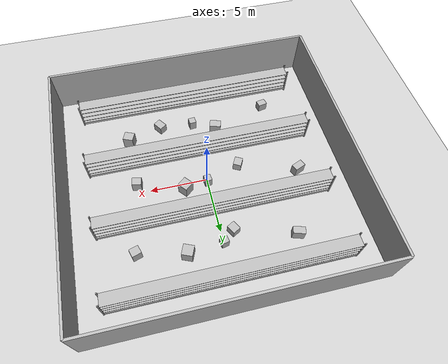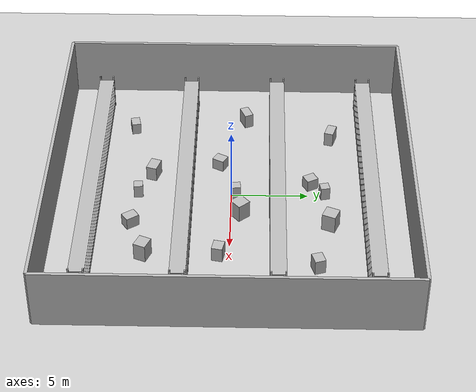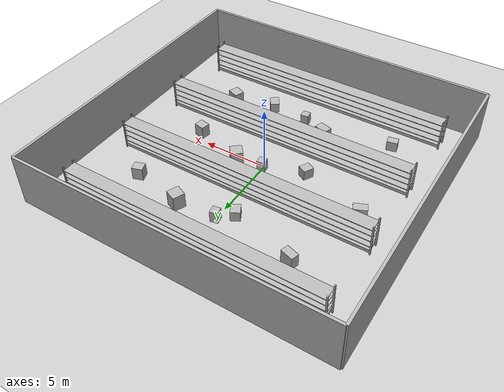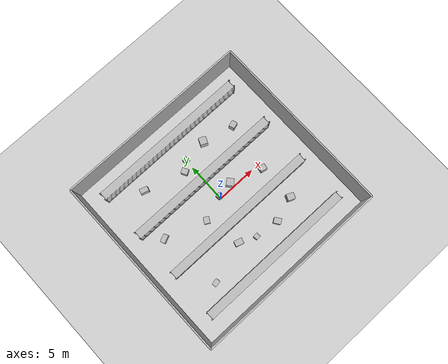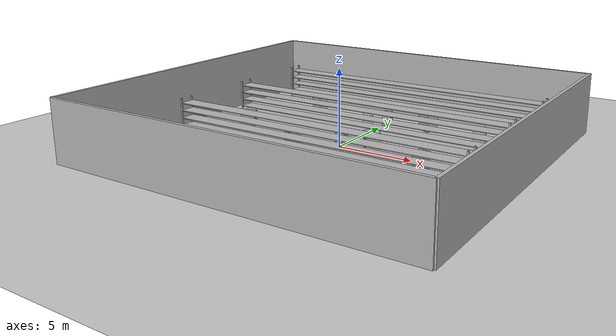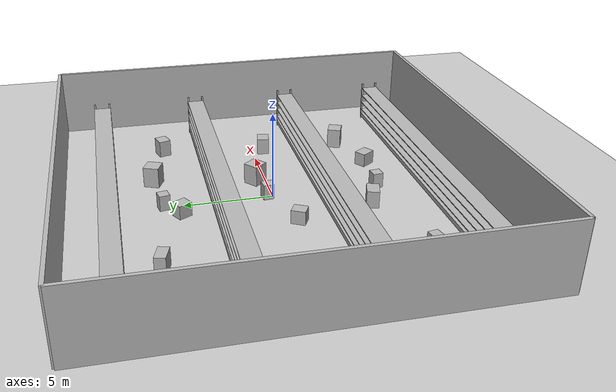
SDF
<?xml version="1.0"?>
<sdf version="1.6">
  <world name="warehouse">

    <!-- ================= GROUND ================= -->
    <include>
      <uri>model://ground_plane</uri>
    </include>

    <include>
      <uri>model://sun</uri>
    </include>

    <!-- =============== SHELF ROW 1 ===================== -->

    <model name="shelf_row_1">
      <static>true</static>
      <pose>0 -9 0 0 0 0</pose>
      <link name="rack1">

        <!-- POSTS -->
        <visual name="r1_flv"><pose>-9.95 -0.45 1.25 0 0 0</pose><geometry><box><size>0.1 0.1 2.5</size></box></geometry></visual>
        <collision name="r1_flc"><pose>-9.95 -0.45 1.25 0 0 0</pose><geometry><box><size>0.1 0.1 2.5</size></box></geometry></collision>

        <visual name="r1_frv"><pose>9.95 -0.45 1.25 0 0 0</pose><geometry><box><size>0.1 0.1 2.5</size></box></geometry></visual>
        <collision name="r1_frc"><pose>9.95 -0.45 1.25 0 0 0</pose><geometry><box><size>0.1 0.1 2.5</size></box></geometry></collision>

        <visual name="r1_blv"><pose>-9.95 0.45 1.25 0 0 0</pose><geometry><box><size>0.1 0.1 2.5</size></box></geometry></visual>
        <collision name="r1_blc"><pose>-9.95 0.45 1.25 0 0 0</pose><geometry><box><size>0.1 0.1 2.5</size></box></geometry></collision>

        <visual name="r1_brv"><pose>9.95 0.45 1.25 0 0 0</pose><geometry><box><size>0.1 0.1 2.5</size></box></geometry></visual>
        <collision name="r1_brc"><pose>9.95 0.45 1.25 0 0 0</pose><geometry><box><size>0.1 0.1 2.5</size></box></geometry></collision>

        <!-- SHELVES -->
        <!-- Bottom shelf: thicker/taller for LiDAR detection -->
        <visual name="r1_s1v"><pose>0 0 0.30 0 0 0</pose><geometry><box><size>19.8 1 0.25</size></box></geometry></visual>
        <collision name="r1_s1c"><pose>0 0 0.30 0 0 0</pose><geometry><box><size>19.8 1 0.25</size></box></geometry></collision>

        <visual name="r1_s2v"><pose>0 0 0.7 0 0 0</pose><geometry><box><size>19.8 1 0.05</size></box></geometry></visual>
        <collision name="r1_s2c"><pose>0 0 0.7 0 0 0</pose><geometry><box><size>19.8 1 0.05</size></box></geometry></collision>

        <visual name="r1_s3v"><pose>0 0 1.2 0 0 0</pose><geometry><box><size>19.8 1 0.05</size></box></geometry></visual>
        <collision name="r1_s3c"><pose>0 0 1.2 0 0 0</pose><geometry><box><size>19.8 1 0.05</size></box></geometry></collision>

        <visual name="r1_s4v"><pose>0 0 1.7 0 0 0</pose><geometry><box><size>19.8 1 0.05</size></box></geometry></visual>
        <collision name="r1_s4c"><pose>0 0 1.7 0 0 0</pose><geometry><box><size>19.8 1 0.05</size></box></geometry></collision>

        <visual name="r1_s5v"><pose>0 0 2.2 0 0 0</pose><geometry><box><size>19.8 1 0.05</size></box></geometry></visual>
        <collision name="r1_s5c"><pose>0 0 2.2 0 0 0</pose><geometry><box><size>19.8 1 0.05</size></box></geometry></collision>

      </link>
    </model>

    <!-- =============== SHELF ROW 2 ===================== -->

    <model name="shelf_row_2">
      <static>true</static>
      <pose>0 -3 0 0 0 0</pose>
      <link name="rack2">

        <!-- POSTS -->
        <visual name="r2_flv"><pose>-9.95 -0.45 1.25 0 0 0</pose><geometry><box><size>0.1 0.1 2.5</size></box></geometry></visual>
        <collision name="r2_flc"><pose>-9.95 -0.45 1.25 0 0 0</pose><geometry><box><size>0.1 0.1 2.5</size></box></geometry></collision>

        <visual name="r2_frv"><pose>9.95 -0.45 1.25 0 0 0</pose><geometry><box><size>0.1 0.1 2.5</size></box></geometry></visual>
        <collision name="r2_frc"><pose>9.95 -0.45 1.25 0 0 0</pose><geometry><box><size>0.1 0.1 2.5</size></box></geometry></collision>

        <visual name="r2_blv"><pose>-9.95 0.45 1.25 0 0 0</pose><geometry><box><size>0.1 0.1 2.5</size></box></geometry></visual>
        <collision name="r2_blc"><pose>-9.95 0.45 1.25 0 0 0</pose><geometry><box><size>0.1 0.1 2.5</size></box></geometry></collision>

        <visual name="r2_brv"><pose>9.95 0.45 1.25 0 0 0</pose><geometry><box><size>0.1 0.1 2.5</size></box></geometry></visual>
        <collision name="r2_brc"><pose>9.95 0.45 1.25 0 0 0</pose><geometry><box><size>0.1 0.1 2.5</size></box></geometry></collision>

        <!-- SHELVES -->
        <!-- Bottom shelf: thicker/taller for LiDAR detection -->
        <visual name="r2_s1v"><pose>0 0 0.30 0 0 0</pose><geometry><box><size>19.8 1 0.25</size></box></geometry></visual>
        <collision name="r2_s1c"><pose>0 0 0.30 0 0 0</pose><geometry><box><size>19.8 1 0.25</size></box></geometry></collision>

        <visual name="r2_s2v"><pose>0 0 0.7 0 0 0</pose><geometry><box><size>19.8 1 0.05</size></box></geometry></visual>
        <collision name="r2_s2c"><pose>0 0 0.7 0 0 0</pose><geometry><box><size>19.8 1 0.05</size></box></geometry></collision>

        <visual name="r2_s3v"><pose>0 0 1.2 0 0 0</pose><geometry><box><size>19.8 1 0.05</size></box></geometry></visual>
        <collision name="r2_s3c"><pose>0 0 1.2 0 0 0</pose><geometry><box><size>19.8 1 0.05</size></box></geometry></collision>

        <visual name="r2_s4v"><pose>0 0 1.7 0 0 0</pose><geometry><box><size>19.8 1 0.05</size></box></geometry></visual>
        <collision name="r2_s4c"><pose>0 0 1.7 0 0 0</pose><geometry><box><size>19.8 1 0.05</size></box></geometry></collision>

        <visual name="r2_s5v"><pose>0 0 2.2 0 0 0</pose><geometry><box><size>19.8 1 0.05</size></box></geometry></visual>
        <collision name="r2_s5c"><pose>0 0 2.2 0 0 0</pose><geometry><box><size>19.8 1 0.05</size></box></geometry></collision>

      </link>
    </model>

    <!-- ================= SHELF ROW 3 ================= -->
    <model name="shelf_row_3">
      <static>true</static>
      <pose>0 3 0 0 0 0</pose>
      <link name="rack3">

        <!-- POSTS -->
        <visual name="r3_flv"><pose>-9.95 -0.45 1.25 0 0 0</pose><geometry><box><size>0.1 0.1 2.5</size></box></geometry></visual>
        <collision name="r3_flc"><pose>-9.95 -0.45 1.25 0 0 0</pose><geometry><box><size>0.1 0.1 2.5</size></box></geometry></collision>

        <visual name="r3_frv"><pose>9.95 -0.45 1.25 0 0 0</pose><geometry><box><size>0.1 0.1 2.5</size></box></geometry></visual>
        <collision name="r3_frc"><pose>9.95 -0.45 1.25 0 0 0</pose><geometry><box><size>0.1 0.1 2.5</size></box></geometry></collision>

        <visual name="r3_blv"><pose>-9.95 0.45 1.25 0 0 0</pose><geometry><box><size>0.1 0.1 2.5</size></box></geometry></visual>
        <collision name="r3_blc"><pose>-9.95 0.45 1.25 0 0 0</pose><geometry><box><size>0.1 0.1 2.5</size></box></geometry></collision>

        <visual name="r3_brv"><pose>9.95 0.45 1.25 0 0 0</pose><geometry><box><size>0.1 0.1 2.5</size></box></geometry></visual>
        <collision name="r3_brc"><pose>9.95 0.45 1.25 0 0 0</pose><geometry><box><size>0.1 0.1 2.5</size></box></geometry></collision>

        <!-- SHELVES -->
        <!-- Bottom shelf: thicker/taller for LiDAR detection -->
        <visual name="r3_s1v"><pose>0 0 0.30 0 0 0</pose><geometry><box><size>19.8 1 0.25</size></box></geometry></visual>
        <collision name="r3_s1c"><pose>0 0 0.30 0 0 0</pose><geometry><box><size>19.8 1 0.25</size></box></geometry></collision>

        <visual name="r3_s2v"><pose>0 0 0.7 0 0 0</pose><geometry><box><size>19.8 1 0.05</size></box></geometry></visual>
        <collision name="r3_s2c"><pose>0 0 0.7 0 0 0</pose><geometry><box><size>19.8 1 0.05</size></box></geometry></collision>

        <visual name="r3_s3v"><pose>0 0 1.2 0 0 0</pose><geometry><box><size>19.8 1 0.05</size></box></geometry></visual>
        <collision name="r3_s3c"><pose>0 0 1.2 0 0 0</pose><geometry><box><size>19.8 1 0.05</size></box></geometry></collision>

        <visual name="r3_s4v"><pose>0 0 1.7 0 0 0</pose><geometry><box><size>19.8 1 0.05</size></box></geometry></visual>
        <collision name="r3_s4c"><pose>0 0 1.7 0 0 0</pose><geometry><box><size>19.8 1 0.05</size></box></geometry></collision>

        <visual name="r3_s5v"><pose>0 0 2.2 0 0 0</pose><geometry><box><size>19.8 1 0.05</size></box></geometry></visual>
        <collision name="r3_s5c"><pose>0 0 2.2 0 0 0</pose><geometry><box><size>19.8 1 0.05</size></box></geometry></collision>

      </link>
    </model>

    <!-- ================= SHELF ROW 4 ================= -->
    <model name="shelf_row_4">
      <static>true</static>
      <pose>0 9 0 0 0 0</pose>
      <link name="rack4">

        <!-- POSTS -->
        <visual name="r4_flv"><pose>-9.95 -0.45 1.25 0 0 0</pose><geometry><box><size>0.1 0.1 2.5</size></box></geometry></visual>
        <collision name="r4_flc"><pose>-9.95 -0.45 1.25 0 0 0</pose><geometry><box><size>0.1 0.1 2.5</size></box></geometry></collision>

        <visual name="r4_frv"><pose>9.95 -0.45 1.25 0 0 0</pose><geometry><box><size>0.1 0.1 2.5</size></box></geometry></visual>
        <collision name="r4_frc"><pose>9.95 -0.45 1.25 0 0 0</pose><geometry><box><size>0.1 0.1 2.5</size></box></geometry></collision>

        <visual name="r4_blv"><pose>-9.95 0.45 1.25 0 0 0</pose><geometry><box><size>0.1 0.1 2.5</size></box></geometry></visual>
        <collision name="r4_blc"><pose>-9.95 0.45 1.25 0 0 0</pose><geometry><box><size>0.1 0.1 2.5</size></box></geometry></collision>

        <visual name="r4_brv"><pose>9.95 0.45 1.25 0 0 0</pose><geometry><box><size>0.1 0.1 2.5</size></box></geometry></visual>
        <collision name="r4_brc"><pose>9.95 0.45 1.25 0 0 0</pose><geometry><box><size>0.1 0.1 2.5</size></box></geometry></collision>

        <!-- SHELVES -->
        <!-- Bottom shelf: thicker/taller for LiDAR detection -->
        <visual name="r4_s1v"><pose>0 0 0.30 0 0 0</pose><geometry><box><size>19.8 1 0.25</size></box></geometry></visual>
        <collision name="r4_s1c"><pose>0 0 0.30 0 0 0</pose><geometry><box><size>19.8 1 0.25</size></box></geometry></collision>

        <visual name="r4_s2v"><pose>0 0 0.7 0 0 0</pose><geometry><box><size>19.8 1 0.05</size></box></geometry></visual>
        <collision name="r4_s2c"><pose>0 0 0.7 0 0 0</pose><geometry><box><size>19.8 1 0.05</size></box></geometry></collision>

        <visual name="r4_s3v"><pose>0 0 1.2 0 0 0</pose><geometry><box><size>19.8 1 0.05</size></box></geometry></visual>
        <collision name="r4_s3c"><pose>0 0 1.2 0 0 0</pose><geometry><box><size>19.8 1 0.05</size></box></geometry></collision>

        <visual name="r4_s4v"><pose>0 0 1.7 0 0 0</pose><geometry><box><size>19.8 1 0.05</size></box></geometry></visual>
        <collision name="r4_s4c"><pose>0 0 1.7 0 0 0</pose><geometry><box><size>19.8 1 0.05</size></box></geometry></collision>

        <visual name="r4_s5v"><pose>0 0 2.2 0 0 0</pose><geometry><box><size>19.8 1 0.05</size></box></geometry></visual>
        <collision name="r4_s5c"><pose>0 0 2.2 0 0 0</pose><geometry><box><size>19.8 1 0.05</size></box></geometry></collision>

      </link>
    </model>

    <!-- ================= WALLS ================= -->

    <model name="wall_back">
      <static>true</static>
      <pose>-12 0 2 0 0 0</pose>
      <link name="link">
        <collision name="col"><geometry><box><size>0.2 23 4</size></box></geometry></collision>
        <visual name="vis"><geometry><box><size>0.2 23 4</size></box></geometry></visual>
      </link>
    </model>

    <model name="wall_front">
      <static>true</static>
      <pose>12 0 2 0 0 0</pose>
      <link name="link">
        <collision name="col"><geometry><box><size>0.2 23 4</size></box></geometry></collision>
        <visual name="vis"><geometry><box><size>0.2 23 4</size></box></geometry></visual>
      </link>
    </model>

    <model name="wall_left">
      <static>true</static>
      <pose>0 -11.5 2 0 0 0</pose>
      <link name="link">
        <collision name="col"><geometry><box><size>24 0.2 4</size></box></geometry></collision>
        <visual name="vis"><geometry><box><size>24 0.2 4</size></box></geometry></visual>
      </link>
    </model>

    <model name="wall_right">
      <static>true</static>
      <pose>0 11.5 2 0 0 0</pose>
      <link name="link">
        <collision name="col"><geometry><box><size>24 0.2 4</size></box></geometry></collision>
        <visual name="vis"><geometry><box><size>24 0.2 4</size></box></geometry></visual>
      </link>
    </model>

    <!-- ================= BOXES START ================= -->
    <!-- (you can add boxes here later) -->
    <!-- ================= RANDOM OBJECTS ================= -->

        <!-- ================= STAGGERED BOX CLUTTER ================= -->

    <!-- ================= AISLE 1 (~ -6 Y) =============== -->

    <model name="a1_box_1">
      <static>true</static>
      <pose>-7 -6.8 0.4 0 0 0.2</pose>
      <link name="link">
        <collision name="col"><geometry><box><size>0.8 0.6 0.8</size></box></geometry></collision>
        <visual name="vis"><geometry><box><size>0.8 0.6 0.8</size></box></geometry></visual>
      </link>
    </model>

    <model name="a1_box_2">
      <static>true</static>
      <pose>-2 -5.2 0.5 0 0 -0.3</pose>
      <link name="link">
        <collision name="col"><geometry><box><size>1.0 0.7 1.0</size></box></geometry></collision>
        <visual name="vis"><geometry><box><size>1.0 0.7 1.0</size></box></geometry></visual>
      </link>
    </model>

    <model name="a1_box_3">
      <static>true</static>
      <pose>3 -6.4 0.4 0 0 0.6</pose>
      <link name="link">
        <collision name="col"><geometry><box><size>0.7 0.9 0.8</size></box></geometry></collision>
        <visual name="vis"><geometry><box><size>0.7 0.9 0.8</size></box></geometry></visual>
      </link>
    </model>

    <model name="a1_box_4">
      <static>true</static>
      <pose>6 -5.4 0.6 0 0 -0.4</pose>
      <link name="link">
        <collision name="col"><geometry><box><size>0.9 0.8 1.2</size></box></geometry></collision>
        <visual name="vis"><geometry><box><size>0.9 0.8 1.2</size></box></geometry></visual>
      </link>
    </model>

    <model name="a1_box_5">
      <static>true</static>
      <pose>0 -6.1 0.45 0 0 0.1</pose>
      <link name="link">
        <collision name="col"><geometry><box><size>0.6 0.6 0.9</size></box></geometry></collision>
        <visual name="vis"><geometry><box><size>0.6 0.6 0.9</size></box></geometry></visual>
      </link>
    </model>

    <!-- ================= AISLE 2 (~ 0 Y) =============== -->

    <model name="a2_box_1">
      <static>true</static>
      <pose>-8 0.9 0.5 0 0 0.4</pose>
      <link name="link">
        <collision name="col"><geometry><box><size>1.0 0.6 1.0</size></box></geometry></collision>
        <visual name="vis"><geometry><box><size>1.0 0.6 1.0</size></box></geometry></visual>
      </link>
    </model>

    <model name="a2_box_2">
      <static>true</static>
      <pose>-3 -0.8 0.4 0 0 -0.5</pose>
      <link name="link">
        <collision name="col"><geometry><box><size>0.7 0.8 0.8</size></box></geometry></collision>
        <visual name="vis"><geometry><box><size>0.7 0.8 0.8</size></box></geometry></visual>
      </link>
    </model>

    <model name="a2_box_3">
      <static>true</static>
      <pose>2 0.6 0.6 0 0 0.7</pose>
      <link name="link">
        <collision name="col"><geometry><box><size>0.9 0.9 1.2</size></box></geometry></collision>
        <visual name="vis"><geometry><box><size>0.9 0.9 1.2</size></box></geometry></visual>
      </link>
    </model>

    <model name="a2_box_4">
      <static>true</static>
      <pose>6 -0.7 0.5 0 0 -0.2</pose>
      <link name="link">
        <collision name="col"><geometry><box><size>0.8 0.7 1.0</size></box></geometry></collision>
        <visual name="vis"><geometry><box><size>0.8 0.7 1.0</size></box></geometry></visual>
      </link>
    </model>

    <model name="a2_box_5">
      <static>true</static>
      <pose>0 0.3 0.45 0 0 0.1</pose>
      <link name="link">
        <collision name="col"><geometry><box><size>0.6 0.6 0.9</size></box></geometry></collision>
        <visual name="vis"><geometry><box><size>0.6 0.6 0.9</size></box></geometry></visual>
      </link>
    </model>

    <!-- ================= AISLE 3 (~ 6 Y) =============== -->

    <model name="a3_box_1">
      <static>true</static>
      <pose>-6 6.7 0.5 0 0 -0.3</pose>
      <link name="link">
        <collision name="col"><geometry><box><size>1.0 0.6 1.0</size></box></geometry></collision>
        <visual name="vis"><geometry><box><size>1.0 0.6 1.0</size></box></geometry></visual>
      </link>
    </model>

    <model name="a3_box_2">
      <static>true</static>
      <pose>-1 5.2 0.4 0 0 0.5</pose>
      <link name="link">
        <collision name="col"><geometry><box><size>0.7 0.8 0.8</size></box></geometry></collision>
        <visual name="vis"><geometry><box><size>0.7 0.8 0.8</size></box></geometry></visual>
      </link>
    </model>

    <model name="a3_box_3">
      <static>true</static>
      <pose>3 6.4 0.6 0 0 -0.4</pose>
      <link name="link">
        <collision name="col"><geometry><box><size>0.9 0.9 1.2</size></box></geometry></collision>
        <visual name="vis"><geometry><box><size>0.9 0.9 1.2</size></box></geometry></visual>
      </link>
    </model>

    <model name="a3_box_4">
      <static>true</static>
      <pose>7 5.5 0.5 0 0 0.3</pose>
      <link name="link">
        <collision name="col"><geometry><box><size>0.8 0.7 1.0</size></box></geometry></collision>
        <visual name="vis"><geometry><box><size>0.8 0.7 1.0</size></box></geometry></visual>
      </link>
    </model>

    <model name="a3_box_5">
      <static>true</static>
      <pose>0 6.1 0.45 0 0 0.2</pose>
      <link name="link">
        <collision name="col"><geometry><box><size>0.6 0.6 0.9</size></box></geometry></collision>
        <visual name="vis"><geometry><box><size>0.6 0.6 0.9</size></box></geometry></visual>
      </link>
    </model>
  </world>
</sdf>
